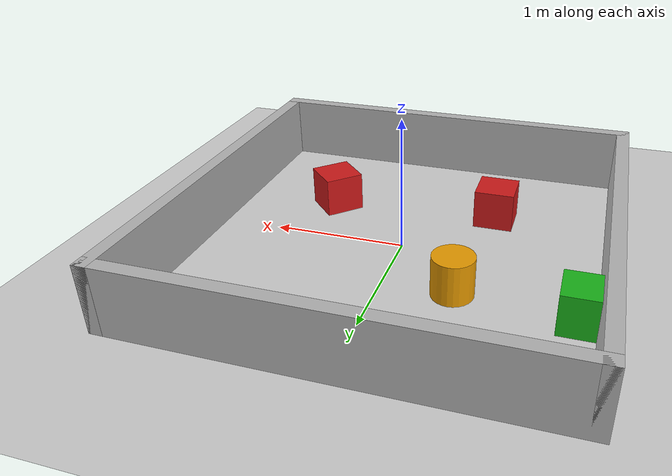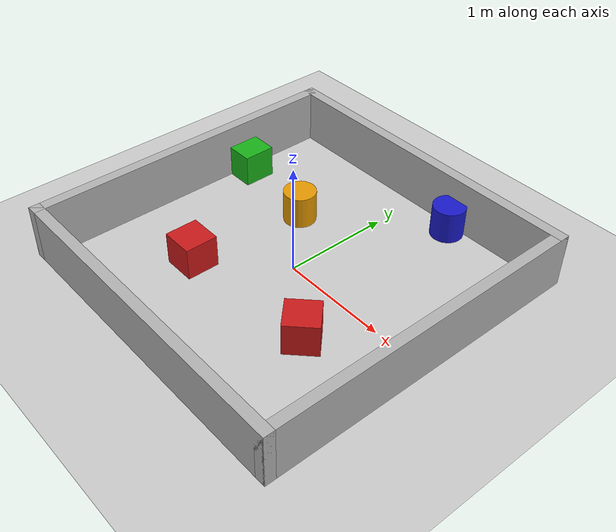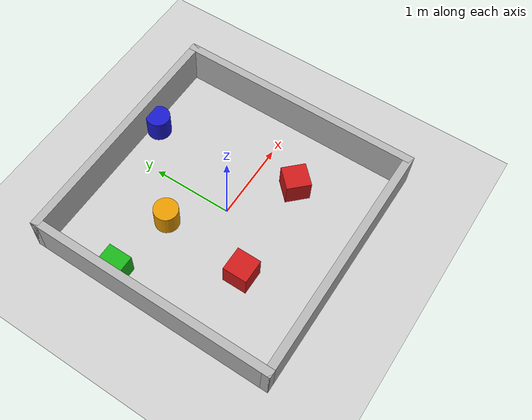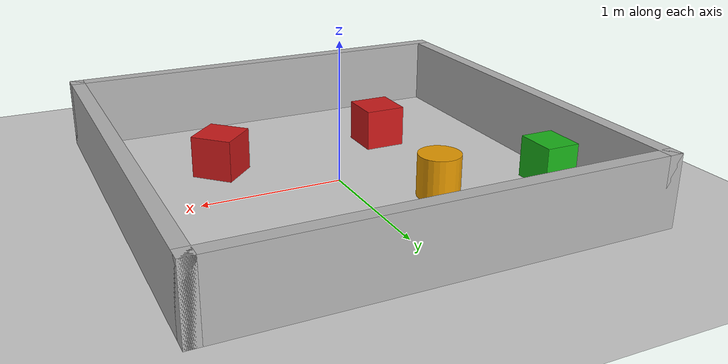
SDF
<?xml version="1.0" ?>
<sdf version="1.8">
  <world name="room_example_world">
    <physics name="1ms" type="ignored">
      <max_step_size>0.001</max_step_size>
      <real_time_factor>1.0</real_time_factor>
    </physics>

    <plugin filename="gz-sim-physics-system" name="gz::sim::systems::Physics"/>
    <plugin filename="gz-sim-user-commands-system" name="gz::sim::systems::UserCommands"/>
    <plugin filename="gz-sim-scene-broadcaster-system" name="gz::sim::systems::SceneBroadcaster"/>

    <light type="directional" name="sun">
      <cast_shadows>true</cast_shadows>
      <pose>0 0 10 0 0 0</pose>
      <diffuse>0.8 0.8 0.8 1</diffuse>
      <specular>0.2 0.2 0.2 1</specular>
      <attenuation>
        <range>1000</range>
        <constant>0.9</constant>
        <linear>0.01</linear>
        <quadratic>0.001</quadratic>
      </attenuation>
      <direction>-0.5 0.1 -0.9</direction>
    </light>

    <model name="ground_plane">
      <static>true</static>
      <link name="link">
        <collision name="collision">
          <geometry>
            <plane>
              <normal>0 0 1</normal>
              <size>100 100</size>
            </plane>
          </geometry>
        </collision>
        <visual name="visual">
          <geometry>
            <plane>
              <normal>0 0 1</normal>
              <size>100 100</size>
            </plane>
          </geometry>
          <material>
            <ambient>0.8 0.8 0.8 1</ambient>
            <diffuse>0.8 0.8 0.8 1</diffuse>
            <specular>0.8 0.8 0.8 1</specular>
          </material>
        </visual>
      </link>
    </model>

    <model name="room_walls">
      <static>true</static>
      <link name="walls_link">
        <collision name="north_col">
          <pose>0 1.5 0.25 0 0 0</pose>
          <geometry><box><size>3.1 0.1 0.5</size></box></geometry>
        </collision>
        <visual name="north_vis">
          <pose>0 1.5 0.25 0 0 0</pose>
          <geometry><box><size>3.1 0.1 0.5</size></box></geometry>
          <material><ambient>0.9 0.9 0.9 1</ambient><diffuse>0.7 0.7 0.7 1</diffuse></material>
        </visual>

        <collision name="south_col">
          <pose>0 -1.5 0.25 0 0 0</pose>
          <geometry><box><size>3.1 0.1 0.5</size></box></geometry>
        </collision>
        <visual name="south_vis">
          <pose>0 -1.5 0.25 0 0 0</pose>
          <geometry><box><size>3.1 0.1 0.5</size></box></geometry>
          <material><ambient>0.9 0.9 0.9 1</ambient><diffuse>0.7 0.7 0.7 1</diffuse></material>
        </visual>

        <collision name="east_col">
          <pose>1.5 0 0.25 0 0 0</pose>
          <geometry><box><size>0.1 3.1 0.5</size></box></geometry>
        </collision>
        <visual name="east_vis">
          <pose>1.5 0 0.25 0 0 0</pose>
          <geometry><box><size>0.1 3.1 0.5</size></box></geometry>
          <material><ambient>0.9 0.9 0.9 1</ambient><diffuse>0.7 0.7 0.7 1</diffuse></material>
        </visual>

        <collision name="west_col">
          <pose>-1.5 0 0.25 0 0 0</pose>
          <geometry><box><size>0.1 3.1 0.5</size></box></geometry>
        </collision>
        <visual name="west_vis">
          <pose>-1.5 0 0.25 0 0 0</pose>
          <geometry><box><size>0.1 3.1 0.5</size></box></geometry>
          <material><ambient>0.9 0.9 0.9 1</ambient><diffuse>0.7 0.7 0.7 1</diffuse></material>
        </visual>
      </link>
    </model>

    <model name="wall_box">
      <static>true</static>
      <pose>-1.35 0.6 0.15 0 0 0</pose>
      <link name="link">
        <collision name="collision">
          <geometry><box><size>0.3 0.3 0.3</size></box></geometry>
        </collision>
        <visual name="visual">
          <geometry><box><size>0.3 0.3 0.3</size></box></geometry>
          <material><ambient>0.1 0.5 0.1 1</ambient><diffuse>0.1 0.7 0.1 1</diffuse></material>
        </visual>
      </link>
    </model>

    <model name="wall_cylinder">
      <static>true</static>
      <pose>0.5 1.35 0.15 0 0 0</pose>
      <link name="link">
        <collision name="collision">
          <geometry><cylinder><radius>0.15</radius><length>0.3</length></cylinder></geometry>
        </collision>
        <visual name="visual">
          <geometry><cylinder><radius>0.15</radius><length>0.3</length></cylinder></geometry>
          <material><ambient>0.1 0.1 0.6 1</ambient><diffuse>0.1 0.1 0.8 1</diffuse></material>
        </visual>
      </link>
    </model>

    <model name="free_box_a">
      <static>true</static>
      <pose>-0.6 -0.6 0.15 0 0 0</pose>
      <link name="link">
        <collision name="collision">
          <geometry><box><size>0.3 0.3 0.3</size></box></geometry>
        </collision>
        <visual name="visual">
          <geometry><box><size>0.3 0.3 0.3</size></box></geometry>
          <material><ambient>0.6 0.1 0.1 1</ambient><diffuse>0.8 0.1 0.1 1</diffuse></material>
        </visual>
      </link>
    </model>

    <model name="free_box_b">
      <static>true</static>
      <pose>0.7 -0.5 0.15 0 0 0.785</pose> <link name="link">
        <collision name="collision">
          <geometry><box><size>0.3 0.3 0.3</size></box></geometry>
        </collision>
        <visual name="visual">
          <geometry><box><size>0.3 0.3 0.3</size></box></geometry>
          <material><ambient>0.6 0.1 0.1 1</ambient><diffuse>0.8 0.1 0.1 1</diffuse></material>
        </visual>
      </link>
    </model>

    <model name="free_cylinder_a">
      <static>true</static>
      <pose>-0.5 0.5 0.15 0 0 0</pose>
      <link name="link">
        <collision name="collision">
          <geometry><cylinder><radius>0.15</radius><length>0.3</length></cylinder></geometry>
        </collision>
        <visual name="visual">
          <geometry><cylinder><radius>0.15</radius><length>0.3</length></cylinder></geometry>
          <material><ambient>0.7 0.5 0.0 1</ambient><diffuse>0.9 0.6 0.0 1</diffuse></material>
        </visual>
      </link>
    </model>

  </world>
</sdf>
